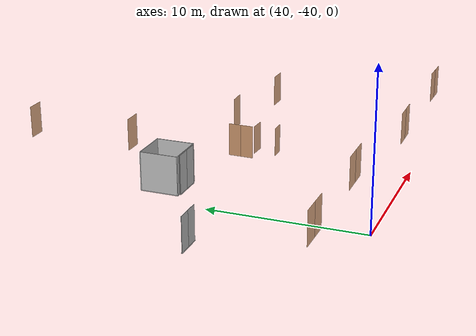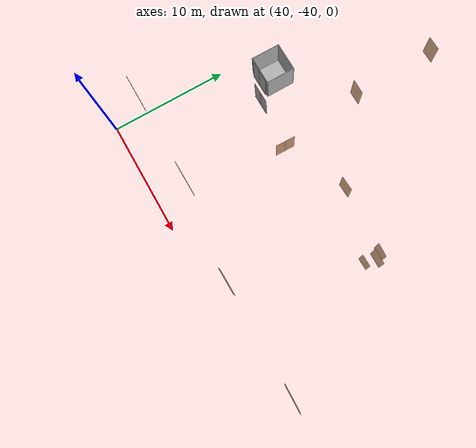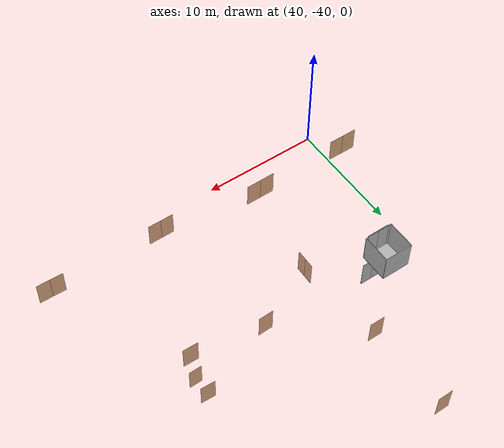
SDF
<sdf version="1.7">
 <world name="sim_world">
  <model name="puertaB1">
   <pose>38.637682729769594 -37.12627257180816 0.0 0 0 3.136013505506541</pose>
   <link name="right">
    <pose>0.6280277892987371 0 1.11 0 0 0</pose>
    <visual name="right_visual">
     <geometry><box><size>1.2460555785974743 0.03 2.2</size></box></geometry>
     <material>
      <ambient>0.5 0.25 0 0.6</ambient>
      <diffuse>0.5 0.25 0 0.6</diffuse>
      <pbr><metal><metalness>0.0</metalness></metal></pbr>
     </material>
    </visual>
    <collision name="right_collision">
     <geometry><box><size>1.2460555785974743 0.03 2.2</size></box></geometry>
     <surface><contact><collide_bitmask>0x02</collide_bitmask></contact></surface>
    </collision>
    <inertial>
     <mass>50.0</mass>
     <inertia><ixx>20.17041666666667</ixx><iyy>26.636060437307865</iyy><izz>6.473143770641194</izz></inertia>
    </inertial>
   </link>
   <joint name="right_joint" type="revolute">
    <parent>world</parent>
    <child>right</child>
    <axis><xyz>0 0 -1</xyz><limit><lower>0</lower><upper>1.57</upper></limit></axis>
    <pose>0.6280277892987371 0 0 0 0 0</pose>
   </joint>
   <link name="left">
    <pose>-0.6280277892987371 0 1.11 0 0 0</pose>
    <visual name="left_visual">
     <geometry><box><size>1.2460555785974743 0.03 2.2</size></box></geometry>
     <material>
      <ambient>0.5 0.25 0 0.6</ambient>
      <diffuse>0.5 0.25 0 0.6</diffuse>
      <pbr><metal><metalness>0.0</metalness></metal></pbr>
     </material>
    </visual>
    <collision name="left_collision">
     <geometry><box><size>1.2460555785974743 0.03 2.2</size></box></geometry>
     <surface><contact><collide_bitmask>0x02</collide_bitmask></contact></surface>
    </collision>
    <inertial>
     <mass>50.0</mass>
     <inertia><ixx>20.17041666666667</ixx><iyy>26.636060437307865</iyy><izz>6.473143770641194</izz></inertia>
    </inertial>
   </link>
   <joint name="left_joint" type="revolute">
    <parent>world</parent>
    <child>left</child>
    <axis><xyz>0 0 -1</xyz><limit><lower>-1.57</lower><upper>0</upper></limit></axis>
    <pose>-0.6280277892987371 0 0 0 0 0</pose>
   </joint>
   <plugin name="register_component" filename="libregister_component.so">
    <component name="Door">
     <v_max_door>0.5</v_max_door>
     <a_max_door>0.3</a_max_door>
     <a_nom_door>0.15</a_nom_door>
     <dx_min_door>0.01</dx_min_door>
     <f_max_door>500.0</f_max_door>
     <ros_interface>true</ros_interface>
     <door name="puertaB1" type="DoubleSwingDoor" left_joint_name="left_joint" right_joint_name="right_joint"/>
    </component>
   </plugin>
  </model>
  <model name="puertaB2">
   <pose>47.033877145293445 -37.12741500091866 0.0 0 0 -3.1370089918595623</pose>
   <link name="right">
    <pose>0.6398023558405757 0 1.11 0 0 0</pose>
    <visual name="right_visual">
     <geometry><box><size>1.2696047116811513 0.03 2.2</size></box></geometry>
     <material>
      <ambient>0.5 0.25 0 0.6</ambient>
      <diffuse>0.5 0.25 0 0.6</diffuse>
      <pbr><metal><metalness>0.0</metalness></metal></pbr>
     </material>
    </visual>
    <collision name="right_collision">
     <geometry><box><size>1.2696047116811513 0.03 2.2</size></box></geometry>
     <surface><contact><collide_bitmask>0x02</collide_bitmask></contact></surface>
    </collision>
    <inertial>
     <mass>50.0</mass>
     <inertia><ixx>20.17041666666667</ixx><iyy>26.882900516345753</iyy><izz>6.71998384967908</izz></inertia>
    </inertial>
   </link>
   <joint name="right_joint" type="revolute">
    <parent>world</parent>
    <child>right</child>
    <axis><xyz>0 0 -1</xyz><limit><lower>0</lower><upper>1.57</upper></limit></axis>
    <pose>0.6398023558405757 0 0 0 0 0</pose>
   </joint>
   <link name="left">
    <pose>-0.6398023558405757 0 1.11 0 0 0</pose>
    <visual name="left_visual">
     <geometry><box><size>1.2696047116811513 0.03 2.2</size></box></geometry>
     <material>
      <ambient>0.5 0.25 0 0.6</ambient>
      <diffuse>0.5 0.25 0 0.6</diffuse>
      <pbr><metal><metalness>0.0</metalness></metal></pbr>
     </material>
    </visual>
    <collision name="left_collision">
     <geometry><box><size>1.2696047116811513 0.03 2.2</size></box></geometry>
     <surface><contact><collide_bitmask>0x02</collide_bitmask></contact></surface>
    </collision>
    <inertial>
     <mass>50.0</mass>
     <inertia><ixx>20.17041666666667</ixx><iyy>26.882900516345753</iyy><izz>6.71998384967908</izz></inertia>
    </inertial>
   </link>
   <joint name="left_joint" type="revolute">
    <parent>world</parent>
    <child>left</child>
    <axis><xyz>0 0 -1</xyz><limit><lower>-1.57</lower><upper>0</upper></limit></axis>
    <pose>-0.6398023558405757 0 0 0 0 0</pose>
   </joint>
   <plugin name="register_component" filename="libregister_component.so">
    <component name="Door">
     <v_max_door>0.5</v_max_door>
     <a_max_door>0.3</a_max_door>
     <a_nom_door>0.15</a_nom_door>
     <dx_min_door>0.01</dx_min_door>
     <f_max_door>500.0</f_max_door>
     <ros_interface>true</ros_interface>
     <door name="puertaB2" type="DoubleSwingDoor" left_joint_name="left_joint" right_joint_name="right_joint"/>
    </component>
   </plugin>
  </model>
  <model name="puerta5">
   <pose>55.85550273947435 -38.24773751925642 0.0 0 0 0.00253646287035479</pose>
   <link name="right">
    <pose>0.5595211787744906 0 1.11 0 0 0</pose>
    <visual name="right_visual">
     <geometry><box><size>1.1090423575489812 0.03 2.2</size></box></geometry>
     <material>
      <ambient>0.5 0.25 0 0.6</ambient>
      <diffuse>0.5 0.25 0 0.6</diffuse>
      <pbr><metal><metalness>0.0</metalness></metal></pbr>
     </material>
    </visual>
    <collision name="right_collision">
     <geometry><box><size>1.1090423575489812 0.03 2.2</size></box></geometry>
     <surface><contact><collide_bitmask>0x02</collide_bitmask></contact></surface>
    </collision>
    <inertial>
     <mass>50.0</mass>
     <inertia><ixx>20.17041666666667</ixx><iyy>25.291562295157515</iyy><izz>5.128645628490842</izz></inertia>
    </inertial>
   </link>
   <joint name="right_joint" type="revolute">
    <parent>world</parent>
    <child>right</child>
    <axis><xyz>0 0 -1</xyz><limit><lower>0</lower><upper>1.57</upper></limit></axis>
    <pose>0.5595211787744906 0 0 0 0 0</pose>
   </joint>
   <link name="left">
    <pose>-0.5595211787744906 0 1.11 0 0 0</pose>
    <visual name="left_visual">
     <geometry><box><size>1.1090423575489812 0.03 2.2</size></box></geometry>
     <material>
      <ambient>0.5 0.25 0 0.6</ambient>
      <diffuse>0.5 0.25 0 0.6</diffuse>
      <pbr><metal><metalness>0.0</metalness></metal></pbr>
     </material>
    </visual>
    <collision name="left_collision">
     <geometry><box><size>1.1090423575489812 0.03 2.2</size></box></geometry>
     <surface><contact><collide_bitmask>0x02</collide_bitmask></contact></surface>
    </collision>
    <inertial>
     <mass>50.0</mass>
     <inertia><ixx>20.17041666666667</ixx><iyy>25.291562295157515</iyy><izz>5.128645628490842</izz></inertia>
    </inertial>
   </link>
   <joint name="left_joint" type="revolute">
    <parent>world</parent>
    <child>left</child>
    <axis><xyz>0 0 -1</xyz><limit><lower>-1.57</lower><upper>0</upper></limit></axis>
    <pose>-0.5595211787744906 0 0 0 0 0</pose>
   </joint>
   <plugin name="register_component" filename="libregister_component.so">
    <component name="Door">
     <v_max_door>0.5</v_max_door>
     <a_max_door>0.3</a_max_door>
     <a_nom_door>0.15</a_nom_door>
     <dx_min_door>0.01</dx_min_door>
     <f_max_door>500.0</f_max_door>
     <ros_interface>true</ros_interface>
     <door name="puerta5" type="DoubleSwingDoor" left_joint_name="left_joint" right_joint_name="right_joint"/>
    </component>
   </plugin>
  </model>
  <model name="puerta4">
   <pose>65.71122689819899 -38.2626244305521 0.0 0 0 -0.024666939195955244</pose>
   <link name="right">
    <pose>0.565615589511446 0 1.11 0 0 0</pose>
    <visual name="right_visual">
     <geometry><box><size>1.121231179022892 0.03 2.2</size></box></geometry>
     <material>
      <ambient>0.5 0.25 0 0.6</ambient>
      <diffuse>0.5 0.25 0 0.6</diffuse>
      <pbr><metal><metalness>0.0</metalness></metal></pbr>
     </material>
    </visual>
    <collision name="right_collision">
     <geometry><box><size>1.121231179022892 0.03 2.2</size></box></geometry>
     <surface><contact><collide_bitmask>0x02</collide_bitmask></contact></surface>
    </collision>
    <inertial>
     <mass>50.0</mass>
     <inertia><ixx>20.17041666666667</ixx><iyy>25.404830653387773</iyy><izz>5.2419139867211015</izz></inertia>
    </inertial>
   </link>
   <joint name="right_joint" type="revolute">
    <parent>world</parent>
    <child>right</child>
    <axis><xyz>0 0 -1</xyz><limit><lower>0</lower><upper>1.57</upper></limit></axis>
    <pose>0.565615589511446 0 0 0 0 0</pose>
   </joint>
   <link name="left">
    <pose>-0.565615589511446 0 1.11 0 0 0</pose>
    <visual name="left_visual">
     <geometry><box><size>1.121231179022892 0.03 2.2</size></box></geometry>
     <material>
      <ambient>0.5 0.25 0 0.6</ambient>
      <diffuse>0.5 0.25 0 0.6</diffuse>
      <pbr><metal><metalness>0.0</metalness></metal></pbr>
     </material>
    </visual>
    <collision name="left_collision">
     <geometry><box><size>1.121231179022892 0.03 2.2</size></box></geometry>
     <surface><contact><collide_bitmask>0x02</collide_bitmask></contact></surface>
    </collision>
    <inertial>
     <mass>50.0</mass>
     <inertia><ixx>20.17041666666667</ixx><iyy>25.404830653387773</iyy><izz>5.2419139867211015</izz></inertia>
    </inertial>
   </link>
   <joint name="left_joint" type="revolute">
    <parent>world</parent>
    <child>left</child>
    <axis><xyz>0 0 -1</xyz><limit><lower>-1.57</lower><upper>0</upper></limit></axis>
    <pose>-0.565615589511446 0 0 0 0 0</pose>
   </joint>
   <plugin name="register_component" filename="libregister_component.so">
    <component name="Door">
     <v_max_door>0.5</v_max_door>
     <a_max_door>0.3</a_max_door>
     <a_nom_door>0.15</a_nom_door>
     <dx_min_door>0.01</dx_min_door>
     <f_max_door>500.0</f_max_door>
     <ros_interface>true</ros_interface>
     <door name="puerta4" type="DoubleSwingDoor" left_joint_name="left_joint" right_joint_name="right_joint"/>
    </component>
   </plugin>
  </model>
  <model name="puertaEC">
   <pose>60.15206084789442 -27.380492492945216 0.0 0 0 -0.021615490977527397</pose>
   <link name="right">
    <pose>0 0 1.11 0 0 0</pose>
    <visual name="right_visual">
     <geometry><box><size>1.2803512290869254 0.03 2.2</size></box></geometry>
     <material>
      <ambient>0.5 0.25 0 0.6</ambient>
      <diffuse>0.5 0.25 0 0.6</diffuse>
      <pbr><metal><metalness>0.0</metalness></metal></pbr>
     </material>
    </visual>
    <collision name="right_collision">
     <geometry><box><size>1.2803512290869254 0.03 2.2</size></box></geometry>
     <surface><contact><collide_bitmask>0x02</collide_bitmask></contact></surface>
    </collision>
    <inertial>
     <mass>50.0</mass>
     <inertia><ixx>20.17041666666667</ixx><iyy>26.997080290935006</iyy><izz>6.834163624268336</izz></inertia>
    </inertial>
   </link>
   <joint name="right_joint" type="revolute">
    <parent>world</parent>
    <child>right</child>
    <axis><xyz>0 0 -1</xyz><limit><lower>0</lower><upper>1.57</upper></limit></axis>
    <pose>0.6451756145434627 0 0 0 0 0</pose>
   </joint>
   <plugin name="register_component" filename="libregister_component.so">
    <component name="Door">
     <v_max_door>0.5</v_max_door>
     <a_max_door>0.3</a_max_door>
     <a_nom_door>0.15</a_nom_door>
     <dx_min_door>0.01</dx_min_door>
     <f_max_door>500.0</f_max_door>
     <ros_interface>true</ros_interface>
     <door name="puertaEC" type="SwingDoor" left_joint_name="empty_joint" right_joint_name="right_joint"/>
    </component>
   </plugin>
  </model>
  <model name="puertaB3">
   <pose>48.694874851013125 -28.84258975723971 0.0 0 0 1.5494775355953916</pose>
   <link name="right">
    <pose>0.41934321853720863 0 1.11 0 0 0</pose>
    <visual name="right_visual">
     <geometry><box><size>0.8286864370744172 0.03 2.2</size></box></geometry>
     <material>
      <ambient>0.5 0.25 0 0.6</ambient>
      <diffuse>0.5 0.25 0 0.6</diffuse>
      <pbr><metal><metalness>0.0</metalness></metal></pbr>
     </material>
    </visual>
    <collision name="right_collision">
     <geometry><box><size>0.8286864370744172 0.03 2.2</size></box></geometry>
     <surface><contact><collide_bitmask>0x02</collide_bitmask></contact></surface>
    </collision>
    <inertial>
     <mass>50.0</mass>
     <inertia><ixx>20.17041666666667</ixx><iyy>23.028005045796224</iyy><izz>2.8650883791295505</izz></inertia>
    </inertial>
   </link>
   <joint name="right_joint" type="revolute">
    <parent>world</parent>
    <child>right</child>
    <axis><xyz>0 0 -1</xyz><limit><lower>0</lower><upper>1.57</upper></limit></axis>
    <pose>0.41934321853720863 0 0 0 0 0</pose>
   </joint>
   <link name="left">
    <pose>-0.41934321853720863 0 1.11 0 0 0</pose>
    <visual name="left_visual">
     <geometry><box><size>0.8286864370744172 0.03 2.2</size></box></geometry>
     <material>
      <ambient>0.5 0.25 0 0.6</ambient>
      <diffuse>0.5 0.25 0 0.6</diffuse>
      <pbr><metal><metalness>0.0</metalness></metal></pbr>
     </material>
    </visual>
    <collision name="left_collision">
     <geometry><box><size>0.8286864370744172 0.03 2.2</size></box></geometry>
     <surface><contact><collide_bitmask>0x02</collide_bitmask></contact></surface>
    </collision>
    <inertial>
     <mass>50.0</mass>
     <inertia><ixx>20.17041666666667</ixx><iyy>23.028005045796224</iyy><izz>2.8650883791295505</izz></inertia>
    </inertial>
   </link>
   <joint name="left_joint" type="revolute">
    <parent>world</parent>
    <child>left</child>
    <axis><xyz>0 0 -1</xyz><limit><lower>-1.57</lower><upper>0</upper></limit></axis>
    <pose>-0.41934321853720863 0 0 0 0 0</pose>
   </joint>
   <plugin name="register_component" filename="libregister_component.so">
    <component name="Door">
     <v_max_door>0.5</v_max_door>
     <a_max_door>0.3</a_max_door>
     <a_nom_door>0.15</a_nom_door>
     <dx_min_door>0.01</dx_min_door>
     <f_max_door>500.0</f_max_door>
     <ros_interface>true</ros_interface>
     <door name="puertaB3" type="DoubleSwingDoor" left_joint_name="left_joint" right_joint_name="right_joint"/>
    </component>
   </plugin>
  </model>
  <model name="w">
   <pose>47.53542708004542 -13.956538227798013 0.0 0 0 -3.132897220578016</pose>
   <link name="right">
    <pose>0 0 1.11 0 0 0</pose>
    <visual name="right_visual">
     <geometry><box><size>1.2334103184774419 0.03 2.2</size></box></geometry>
     <material>
      <ambient>0.5 0.25 0 0.6</ambient>
      <diffuse>0.5 0.25 0 0.6</diffuse>
      <pbr><metal><metalness>0.0</metalness></metal></pbr>
     </material>
    </visual>
    <collision name="right_collision">
     <geometry><box><size>1.2334103184774419 0.03 2.2</size></box></geometry>
     <surface><contact><collide_bitmask>0x02</collide_bitmask></contact></surface>
    </collision>
    <inertial>
     <mass>50.0</mass>
     <inertia><ixx>20.17041666666667</ixx><iyy>26.505420890527606</iyy><izz>6.342504223860936</izz></inertia>
    </inertial>
   </link>
   <joint name="right_joint" type="revolute">
    <parent>world</parent>
    <child>right</child>
    <axis><xyz>0 0 1</xyz><limit><lower>0</lower><upper>1.57</upper></limit></axis>
    <pose>0.6217051592387209 0 0 0 0 0</pose>
   </joint>
   <plugin name="register_component" filename="libregister_component.so">
    <component name="Door">
     <v_max_door>0.5</v_max_door>
     <a_max_door>0.3</a_max_door>
     <a_nom_door>0.15</a_nom_door>
     <dx_min_door>0.01</dx_min_door>
     <f_max_door>500.0</f_max_door>
     <ros_interface>true</ros_interface>
     <door name="w" type="SwingDoor" left_joint_name="empty_joint" right_joint_name="right_joint"/>
    </component>
   </plugin>
  </model>
  <model name="puertaB6">
   <pose>47.64739691049482 -21.400888974734656 0.0 0 0 -0.005553022187559174</pose>
   <link name="right">
    <pose>0 0 1.11 0 0 0</pose>
    <visual name="right_visual">
     <geometry><box><size>1.2583278648812628 0.03 2.2</size></box></geometry>
     <material>
      <ambient>0.5 0.25 0 0.6</ambient>
      <diffuse>0.5 0.25 0 0.6</diffuse>
      <pbr><metal><metalness>0.0</metalness></metal></pbr>
     </material>
    </visual>
    <collision name="right_collision">
     <geometry><box><size>1.2583278648812628 0.03 2.2</size></box></geometry>
     <surface><contact><collide_bitmask>0x02</collide_bitmask></contact></surface>
    </collision>
    <inertial>
     <mass>50.0</mass>
     <inertia><ixx>20.17041666666667</ixx><iyy>26.764120898069326</iyy><izz>6.601204231402656</izz></inertia>
    </inertial>
   </link>
   <joint name="right_joint" type="revolute">
    <parent>world</parent>
    <child>right</child>
    <axis><xyz>0 0 -1</xyz><limit><lower>0</lower><upper>1.57</upper></limit></axis>
    <pose>0.6341639324406314 0 0 0 0 0</pose>
   </joint>
   <plugin name="register_component" filename="libregister_component.so">
    <component name="Door">
     <v_max_door>0.5</v_max_door>
     <a_max_door>0.3</a_max_door>
     <a_nom_door>0.15</a_nom_door>
     <dx_min_door>0.01</dx_min_door>
     <f_max_door>500.0</f_max_door>
     <ros_interface>true</ros_interface>
     <door name="puertaB6" type="SwingDoor" left_joint_name="empty_joint" right_joint_name="right_joint"/>
    </component>
   </plugin>
  </model>
  <model name="puerta3">
   <pose>54.07758860303299 -26.469493609463562 0.0 0 0 0.03399783386577453</pose>
   <link name="right">
    <pose>0 0 1.11 0 0 0</pose>
    <visual name="right_visual">
     <geometry><box><size>1.2526073532450872 0.03 2.2</size></box></geometry>
     <material>
      <ambient>0.5 0.25 0 0.6</ambient>
      <diffuse>0.5 0.25 0 0.6</diffuse>
      <pbr><metal><metalness>0.0</metalness></metal></pbr>
     </material>
    </visual>
    <collision name="right_collision">
     <geometry><box><size>1.2526073532450872 0.03 2.2</size></box></geometry>
     <surface><contact><collide_bitmask>0x02</collide_bitmask></contact></surface>
    </collision>
    <inertial>
     <mass>50.0</mass>
     <inertia><ixx>20.17041666666667</ixx><iyy>26.704271589181932</iyy><izz>6.541354922515261</izz></inertia>
    </inertial>
   </link>
   <joint name="right_joint" type="revolute">
    <parent>world</parent>
    <child>right</child>
    <axis><xyz>0 0 1</xyz><limit><lower>0</lower><upper>1.57</upper></limit></axis>
    <pose>0.6313036766225436 0 0 0 0 0</pose>
   </joint>
   <plugin name="register_component" filename="libregister_component.so">
    <component name="Door">
     <v_max_door>0.5</v_max_door>
     <a_max_door>0.3</a_max_door>
     <a_nom_door>0.15</a_nom_door>
     <dx_min_door>0.01</dx_min_door>
     <f_max_door>500.0</f_max_door>
     <ros_interface>true</ros_interface>
     <door name="puerta3" type="SwingDoor" left_joint_name="empty_joint" right_joint_name="right_joint"/>
    </component>
   </plugin>
  </model>
  <model name="prueta-s12">
   <pose>59.75101315149101 -27.559603310696495 -4.0 0 0 -3.1259927492132356</pose>
   <link name="right">
    <pose>0 0 1.11 0 0 0</pose>
    <visual name="right_visual">
     <geometry><box><size>1.112293472995094 0.03 2.2</size></box></geometry>
     <material>
      <ambient>0.5 0.25 0 0.6</ambient>
      <diffuse>0.5 0.25 0 0.6</diffuse>
      <pbr><metal><metalness>0.0</metalness></metal></pbr>
     </material>
    </visual>
    <collision name="right_collision">
     <geometry><box><size>1.112293472995094 0.03 2.2</size></box></geometry>
     <surface><contact><collide_bitmask>0x02</collide_bitmask></contact></surface>
    </collision>
    <inertial>
     <mass>50.0</mass>
     <inertia><ixx>20.17041666666667</ixx><iyy>25.32165320861454</iyy><izz>5.1587365419478655</izz></inertia>
    </inertial>
   </link>
   <joint name="right_joint" type="revolute">
    <parent>world</parent>
    <child>right</child>
    <axis><xyz>0 0 1</xyz><limit><lower>0</lower><upper>1.57</upper></limit></axis>
    <pose>0.561146736497547 0 0 0 0 0</pose>
   </joint>
   <plugin name="register_component" filename="libregister_component.so">
    <component name="Door">
     <v_max_door>0.5</v_max_door>
     <a_max_door>0.3</a_max_door>
     <a_nom_door>0.15</a_nom_door>
     <dx_min_door>0.01</dx_min_door>
     <f_max_door>500.0</f_max_door>
     <ros_interface>true</ros_interface>
     <door name="prueta-s12" type="SwingDoor" left_joint_name="empty_joint" right_joint_name="right_joint"/>
    </component>
   </plugin>
  </model>
  <model name="prueta-s13">
   <pose>59.688264637268475 -25.93351579884088 -4.0 0 0 3.094342497618009</pose>
   <link name="right">
    <pose>0 0 1.11 0 0 0</pose>
    <visual name="right_visual">
     <geometry><box><size>1.2519070923436058 0.03 2.2</size></box></geometry>
     <material>
      <ambient>0.5 0.25 0 0.6</ambient>
      <diffuse>0.5 0.25 0 0.6</diffuse>
      <pbr><metal><metalness>0.0</metalness></metal></pbr>
     </material>
    </visual>
    <collision name="right_collision">
     <geometry><box><size>1.2519070923436058 0.03 2.2</size></box></geometry>
     <surface><contact><collide_bitmask>0x02</collide_bitmask></contact></surface>
    </collision>
    <inertial>
     <mass>50.0</mass>
     <inertia><ixx>20.17041666666667</ixx><iyy>26.696964032750927</iyy><izz>6.534047366084256</izz></inertia>
    </inertial>
   </link>
   <joint name="right_joint" type="revolute">
    <parent>world</parent>
    <child>right</child>
    <axis><xyz>0 0 1</xyz><limit><lower>0</lower><upper>1.57</upper></limit></axis>
    <pose>0.6309535461718029 0 0 0 0 0</pose>
   </joint>
   <plugin name="register_component" filename="libregister_component.so">
    <component name="Door">
     <v_max_door>0.5</v_max_door>
     <a_max_door>0.3</a_max_door>
     <a_nom_door>0.15</a_nom_door>
     <dx_min_door>0.01</dx_min_door>
     <f_max_door>500.0</f_max_door>
     <ros_interface>true</ros_interface>
     <door name="prueta-s13" type="SwingDoor" left_joint_name="empty_joint" right_joint_name="right_joint"/>
    </component>
   </plugin>
  </model>
  <model name="ShaftDoor_lift1_baixa_lift1">
   <pose>42.54076234176769 -27.681868118925703 0.0 0 0 0.0</pose>
   <link name="right_door">
    <pose>0.5 0 1.25 0 0 0</pose>
    <visual name="right_door_visual">
     <geometry><box><size>1.0 0.03 2.5</size></box></geometry>
     <material>
      <ambient>0.5 0.5 0.5 1</ambient>
      <diffuse>0.7 0.7 0.7 1</diffuse>
      <specular>0.6 0.6 0.6 1</specular>
      <emissive>0.1 0.1 0.1 1</emissive>
     </material>
    </visual>
    <collision name="right_door_collision">
     <geometry><box><size>1.0 0.03 2.5</size></box></geometry>
     <surface><contact><collide_bitmask>0x02</collide_bitmask></contact></surface>
    </collision>
   </link>
   <link name="left_door">
    <pose>-0.5 0 1.25 0 0 0</pose>
    <visual name="left_door_visual">
     <geometry><box><size>1.0 0.03 2.5</size></box></geometry>
     <material>
      <ambient>0.5 0.5 0.5 1</ambient>
      <diffuse>0.7 0.7 0.7 1</diffuse>
      <specular>0.6 0.6 0.6 1</specular>
      <emissive>0.1 0.1 0.1 1</emissive>
     </material>
    </visual>
    <collision name="left_door_collision">
     <geometry><box><size>1.0 0.03 2.5</size></box></geometry>
     <surface><contact><collide_bitmask>0x02</collide_bitmask></contact></surface>
    </collision>
   </link>
   <joint name="right_joint" type="prismatic">
    <parent>world</parent>
    <child>right_door</child>
    <axis><xyz>1 0 0</xyz><limit><lower>0</lower><upper>1.0</upper></limit></axis>
   </joint>
   <joint name="left_joint" type="prismatic">
    <parent>world</parent>
    <child>left_door</child>
    <axis><xyz>1 0 0</xyz><limit><lower>-1.0</lower><upper>0</upper></limit></axis>
   </joint>
   <link name="ramp">
    <pose>0 0 -0.025 0 0 0</pose>
    <visual name="ramp_visual">
     <geometry><box><size>2.0 0.1 0.05</size></box></geometry>
     <material>
      <ambient>0.5 0.5 0.5 1</ambient>
      <diffuse>0.7 0.7 0.7 1</diffuse>
      <specular>0.6 0.6 0.6 1</specular>
      <emissive>0.1 0.1 0.1 1</emissive>
     </material>
    </visual>
    <collision name="ramp_collision">
     <geometry><box><size>2.0 0.1 0.05</size></box></geometry>
     <surface><contact><collide_bitmask>0x02</collide_bitmask></contact></surface>
    </collision>
   </link>
   <joint name="ramp_joint" type="fixed"><parent>world</parent><child>ramp</child></joint>
   <plugin name="register_component" filename="libregister_component.so">
    <component name="Door">
     <v_max_door>0.3</v_max_door>
     <a_max_door>0.2</a_max_door>
     <a_nom_door>0.1</a_nom_door>
     <dx_min_door>0.0001</dx_min_door>
     <f_max_door>35.0</f_max_door>
     <door left_joint_name="left_joint" name="ShaftDoor_lift1_baixa_lift1" right_joint_name="right_joint" type="DoubleSlidingDoor"/>
    </component>
   </plugin>
  </model>
  <model name="ShaftDoor_lift1_soterrani_1_lift1">
   <pose>42.54076234176769 -27.681868118925703 -4.0 0 0 0.0</pose>
   <link name="right_door">
    <pose>0.5 0 1.25 0 0 0</pose>
    <visual name="right_door_visual">
     <geometry><box><size>1.0 0.03 2.5</size></box></geometry>
     <material>
      <ambient>0.5 0.5 0.5 1</ambient>
      <diffuse>0.7 0.7 0.7 1</diffuse>
      <specular>0.6 0.6 0.6 1</specular>
      <emissive>0.1 0.1 0.1 1</emissive>
     </material>
    </visual>
    <collision name="right_door_collision">
     <geometry><box><size>1.0 0.03 2.5</size></box></geometry>
     <surface><contact><collide_bitmask>0x02</collide_bitmask></contact></surface>
    </collision>
   </link>
   <link name="left_door">
    <pose>-0.5 0 1.25 0 0 0</pose>
    <visual name="left_door_visual">
     <geometry><box><size>1.0 0.03 2.5</size></box></geometry>
     <material>
      <ambient>0.5 0.5 0.5 1</ambient>
      <diffuse>0.7 0.7 0.7 1</diffuse>
      <specular>0.6 0.6 0.6 1</specular>
      <emissive>0.1 0.1 0.1 1</emissive>
     </material>
    </visual>
    <collision name="left_door_collision">
     <geometry><box><size>1.0 0.03 2.5</size></box></geometry>
     <surface><contact><collide_bitmask>0x02</collide_bitmask></contact></surface>
    </collision>
   </link>
   <joint name="right_joint" type="prismatic">
    <parent>world</parent>
    <child>right_door</child>
    <axis><xyz>1 0 0</xyz><limit><lower>0</lower><upper>1.0</upper></limit></axis>
   </joint>
   <joint name="left_joint" type="prismatic">
    <parent>world</parent>
    <child>left_door</child>
    <axis><xyz>1 0 0</xyz><limit><lower>-1.0</lower><upper>0</upper></limit></axis>
   </joint>
   <link name="ramp">
    <pose>0 0 -0.025 0 0 0</pose>
    <visual name="ramp_visual">
     <geometry><box><size>2.0 0.1 0.05</size></box></geometry>
     <material>
      <ambient>0.5 0.5 0.5 1</ambient>
      <diffuse>0.7 0.7 0.7 1</diffuse>
      <specular>0.6 0.6 0.6 1</specular>
      <emissive>0.1 0.1 0.1 1</emissive>
     </material>
    </visual>
    <collision name="ramp_collision">
     <geometry><box><size>2.0 0.1 0.05</size></box></geometry>
     <surface><contact><collide_bitmask>0x02</collide_bitmask></contact></surface>
    </collision>
   </link>
   <joint name="ramp_joint" type="fixed"><parent>world</parent><child>ramp</child></joint>
   <plugin name="register_component" filename="libregister_component.so">
    <component name="Door">
     <v_max_door>0.3</v_max_door>
     <a_max_door>0.2</a_max_door>
     <a_nom_door>0.1</a_nom_door>
     <dx_min_door>0.0001</dx_min_door>
     <f_max_door>35.0</f_max_door>
     <door left_joint_name="left_joint" name="ShaftDoor_lift1_soterrani_1_lift1" right_joint_name="right_joint" type="DoubleSlidingDoor"/>
    </component>
   </plugin>
  </model>
  <model name="lift1">
   <link name="platform">
    <inertial><mass>1200</mass><inertia><ixx>625.25</ixx><iyy>625.25</iyy><izz>1250.0</izz></inertia></inertial>
    <visual name="floor_visual">
     <pose>0 0 -0.025 0 0 0</pose>
     <geometry><box><size>2.5 2.5 0.05</size></box></geometry>
     <material>
      <ambient>0.5 0.5 0.5 1</ambient>
      <diffuse>0.7 0.7 0.7 1</diffuse>
      <specular>0.6 0.6 0.6 1</specular>
      <emissive>0.1 0.1 0.1 1</emissive>
     </material>
    </visual>
    <collision name="floor_collision">
     <pose>0 0 -0.025 0 0 0</pose>
     <geometry><box><size>2.5 2.5 0.05</size></box></geometry>
     <surface><contact><collide_bitmask>0x01</collide_bitmask></contact></surface>
    </collision>
    <visual name="frontwall1_visual">
     <pose>0.0 1.225 1.25 0 0 0</pose>
     <geometry><box><size>2.5 0.05 2.5</size></box></geometry>
     <material>
      <ambient>0.5 0.5 0.5 1</ambient>
      <diffuse>0.7 0.7 0.7 1</diffuse>
      <specular>0.6 0.6 0.6 1</specular>
      <emissive>0.1 0.1 0.1 1</emissive>
     </material>
    </visual>
    <collision name="frontwall1_collision">
     <pose>0.0 1.225 1.25 0 0 0</pose>
     <geometry><box><size>2.5 0.05 2.5</size></box></geometry>
     <surface><contact><collide_bitmask>0x01</collide_bitmask></contact></surface>
    </collision>
    <visual name="backwall1_visual">
     <pose>-1.125 -1.225 1.25 0 0 0</pose>
     <geometry><box><size>0.25 0.05 2.5</size></box></geometry>
     <material>
      <ambient>0.5 0.5 0.5 1</ambient>
      <diffuse>0.7 0.7 0.7 1</diffuse>
      <specular>0.6 0.6 0.6 1</specular>
      <emissive>0.1 0.1 0.1 1</emissive>
     </material>
    </visual>
    <collision name="backwall1_collision">
     <pose>-1.125 -1.225 1.25 0 0 0</pose>
     <geometry><box><size>0.25 0.05 2.5</size></box></geometry>
     <surface><contact><collide_bitmask>0x01</collide_bitmask></contact></surface>
    </collision>
    <visual name="backwall2_visual">
     <pose>1.125 -1.225 1.25 0 0 0</pose>
     <geometry><box><size>0.25 0.05 2.5</size></box></geometry>
     <material>
      <ambient>0.5 0.5 0.5 1</ambient>
      <diffuse>0.7 0.7 0.7 1</diffuse>
      <specular>0.6 0.6 0.6 1</specular>
      <emissive>0.1 0.1 0.1 1</emissive>
     </material>
    </visual>
    <collision name="backwall2_collision">
     <pose>1.125 -1.225 1.25 0 0 0</pose>
     <geometry><box><size>0.25 0.05 2.5</size></box></geometry>
     <surface><contact><collide_bitmask>0x01</collide_bitmask></contact></surface>
    </collision>
    <visual name="leftwall1_visual">
     <pose>-1.225 0.0 1.25 0 0 1.5707963267948966</pose>
     <geometry><box><size>2.4 0.05 2.5</size></box></geometry>
     <material>
      <ambient>0.5 0.5 0.5 1</ambient>
      <diffuse>0.7 0.7 0.7 1</diffuse>
      <specular>0.6 0.6 0.6 1</specular>
      <emissive>0.1 0.1 0.1 1</emissive>
     </material>
    </visual>
    <collision name="leftwall1_collision">
     <pose>-1.225 0.0 1.25 0 0 1.5707963267948966</pose>
     <geometry><box><size>2.4 0.05 2.5</size></box></geometry>
     <surface><contact><collide_bitmask>0x01</collide_bitmask></contact></surface>
    </collision>
    <visual name="rightwall1_visual">
     <pose>1.225 0.0 1.25 0 0 1.5707963267948966</pose>
     <geometry><box><size>2.4 0.05 2.5</size></box></geometry>
     <material>
      <ambient>0.5 0.5 0.5 1</ambient>
      <diffuse>0.7 0.7 0.7 1</diffuse>
      <specular>0.6 0.6 0.6 1</specular>
      <emissive>0.1 0.1 0.1 1</emissive>
     </material>
    </visual>
    <collision name="rightwall1_collision">
     <pose>1.225 0.0 1.25 0 0 1.5707963267948966</pose>
     <geometry><box><size>2.4 0.05 2.5</size></box></geometry>
     <surface><contact><collide_bitmask>0x01</collide_bitmask></contact></surface>
    </collision>
   </link>
   <joint name="cabin_joint" type="prismatic">
    <parent>world</parent>
    <child>platform</child>
    <axis><xyz>0 0 1</xyz></axis>
   </joint>
   <model name="CabinDoor_lift1_lift1">
    <pose>0.0 -1.225 0 0 0 0.0</pose>
    <link name="right_door">
     <pose>0.5 0 1.25 0 0 0</pose>
     <visual name="right_door_visual">
      <geometry><box><size>1.0 0.03 2.5</size></box></geometry>
      <material>
       <ambient>0.5 0.5 0.5 1</ambient>
       <diffuse>0.7 0.7 0.7 1</diffuse>
       <specular>0.6 0.6 0.6 1</specular>
       <emissive>0.1 0.1 0.1 1</emissive>
      </material>
     </visual>
     <collision name="right_door_collision">
      <geometry><box><size>1.0 0.03 2.5</size></box></geometry>
      <surface><contact><collide_bitmask>0x02</collide_bitmask></contact></surface>
     </collision>
    </link>
    <link name="left_door">
     <pose>-0.5 0 1.25 0 0 0</pose>
     <visual name="left_door_visual">
      <geometry><box><size>1.0 0.03 2.5</size></box></geometry>
      <material>
       <ambient>0.5 0.5 0.5 1</ambient>
       <diffuse>0.7 0.7 0.7 1</diffuse>
       <specular>0.6 0.6 0.6 1</specular>
       <emissive>0.1 0.1 0.1 1</emissive>
      </material>
     </visual>
     <collision name="left_door_collision">
      <geometry><box><size>1.0 0.03 2.5</size></box></geometry>
      <surface><contact><collide_bitmask>0x02</collide_bitmask></contact></surface>
     </collision>
    </link>
    <plugin name="register_component" filename="libregister_component.so">
     <component name="Door">
      <v_max_door>0.3</v_max_door>
      <a_max_door>0.2</a_max_door>
      <a_nom_door>0.1</a_nom_door>
      <dx_min_door>0.0001</dx_min_door>
      <f_max_door>35.0</f_max_door>
      <door left_joint_name="CabinDoor_lift1_lift1_left_joint" name="CabinDoor_lift1_lift1" right_joint_name="CabinDoor_lift1_lift1_right_joint" type="DoubleSlidingDoor"/>
     </component>
    </plugin>
   </model>
   <joint name="CabinDoor_lift1_lift1_right_joint" type="prismatic">
    <parent>platform</parent>
    <child>CabinDoor_lift1_lift1::right_door</child>
    <axis><xyz>1 0 0</xyz><limit><lower>0</lower><upper>1.0</upper></limit></axis>
   </joint>
   <joint name="CabinDoor_lift1_lift1_left_joint" type="prismatic">
    <parent>platform</parent>
    <child>CabinDoor_lift1_lift1::left_door</child>
    <axis><xyz>1 0 0</xyz><limit><lower>-1.0</lower><upper>0</upper></limit></axis>
   </joint>
   <plugin name="register_component" filename="libregister_component.so">
    <component name="Lift">
     <lift_name>lift1</lift_name>
     <floor name="baixa" elevation="0.0">
      <door_pair cabin_door="CabinDoor_lift1_lift1" shaft_door="ShaftDoor_lift1_baixa_lift1"/>
     </floor>
     <floor name="soterrani_1" elevation="-4.0">
      <door_pair cabin_door="CabinDoor_lift1_lift1" shaft_door="ShaftDoor_lift1_soterrani_1_lift1"/>
     </floor>
     <initial_floor>baixa</initial_floor>
     <v_max_cabin>2.0</v_max_cabin>
     <a_max_cabin>1.2</a_max_cabin>
     <a_nom_cabin>1.0</a_nom_cabin>
     <dx_min_cabin>0.001</dx_min_cabin>
     <f_max_cabin>25323.0</f_max_cabin>
     <cabin_joint_name>cabin_joint</cabin_joint_name>
    </component>
   </plugin>
   <pose>42.54076234176769 -26.381868118925702 0 0 0 0.0</pose>
  </model>
 </world>
</sdf>
